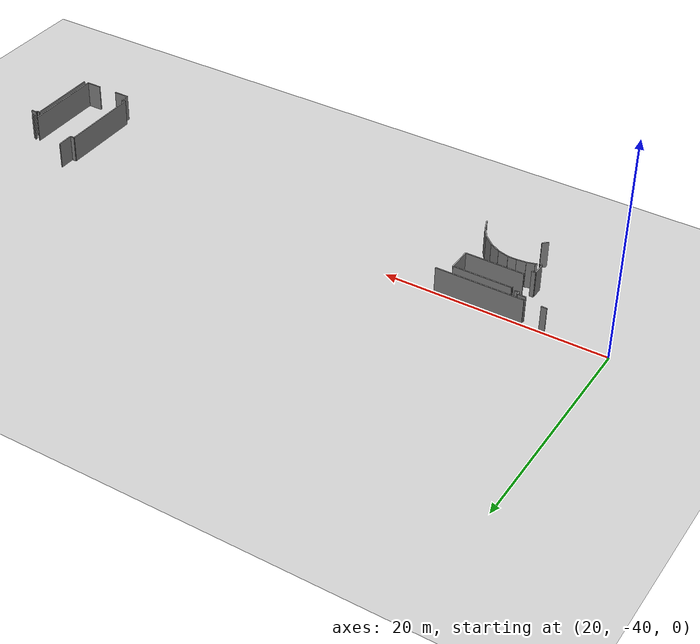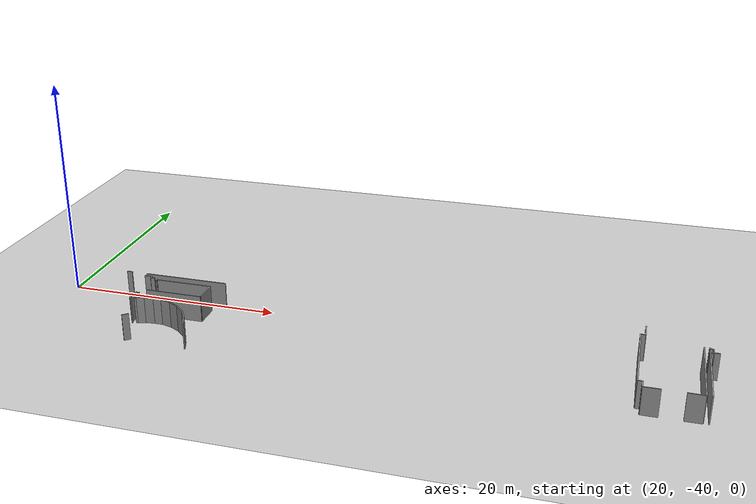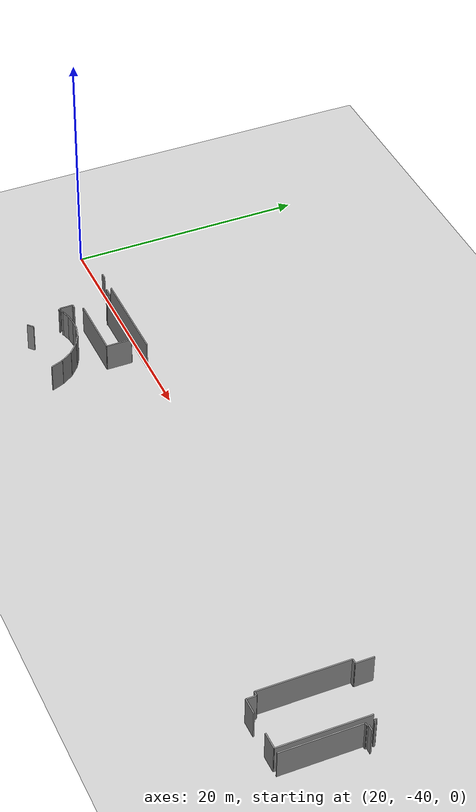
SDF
<sdf version="1.6">
 <world name="default">
  <model name="ground_plane">
   <static>1</static>
   <link name="link">
    <collision name="collision">
     <geometry><plane><normal>0 0 1</normal><size>100 100</size></plane></geometry>
     <surface><friction><ode><mu>100</mu><mu2>50</mu2></ode></friction></surface>
    </collision>
    <visual name="visual">
     <cast_shadows>0</cast_shadows>
     <geometry><plane><normal>0 0 1</normal><size>100 100</size></plane></geometry>
     <material>
      <script><uri>file://media/materials/scripts/gazebo.material</uri><name>Gazebo/Grey</name></script>
     </material>
    </visual>
   </link>
  </model>
  <model name="0510035518_A_40_1_101">
   <static>1</static>
   <link name="Wall_218">
    <collision name="Wall_218_Collision">
     <geometry><box><size>0.755795490632 0.1 2.5</size></box></geometry>
     <pose>0.377897745316 0 1.25 0 0 0</pose>
    </collision>
    <visual name="Wall_218_Visual">
     <pose>0.377897745316 0 1.25 0 0 0</pose>
     <geometry><box><size>0.755795490632 0.1 2.5</size></box></geometry>
     <material>
      <script><uri>file://media/materials/scripts/gazebo.material</uri><name>Gazebo/Grey</name></script>
      <ambient>1 1 1 1</ambient>
     </material>
    </visual>
    <pose>144.402159416 -109.179295014 0 0 0 0.0</pose>
   </link>
   <link name="Wall_219">
    <collision name="Wall_219_Collision">
     <geometry><box><size>0.297237218164 0.1 2.5</size></box></geometry>
     <pose>0.148618609082 0 1.25 0 0 0</pose>
    </collision>
    <visual name="Wall_219_Visual">
     <pose>0.148618609082 0 1.25 0 0 0</pose>
     <geometry><box><size>0.297237218164 0.1 2.5</size></box></geometry>
     <material>
      <script><uri>file://media/materials/scripts/gazebo.material</uri><name>Gazebo/Grey</name></script>
      <ambient>1 1 1 1</ambient>
     </material>
    </visual>
    <pose>145.157954906 -109.179295014 0 0 0 -1.57079632679</pose>
   </link>
   <link name="Wall_220">
    <collision name="Wall_220_Collision">
     <geometry><box><size>0.395554144173 0.1 2.5</size></box></geometry>
     <pose>0.197777072086 0 1.25 0 0 0</pose>
    </collision>
    <visual name="Wall_220_Visual">
     <pose>0.197777072086 0 1.25 0 0 0</pose>
     <geometry><box><size>0.395554144173 0.1 2.5</size></box></geometry>
     <material>
      <script><uri>file://media/materials/scripts/gazebo.material</uri><name>Gazebo/Grey</name></script>
      <ambient>1 1 1 1</ambient>
     </material>
    </visual>
    <pose>145.157954906 -109.476532232 0 0 0 0.0</pose>
   </link>
   <link name="Wall_221">
    <collision name="Wall_221_Collision">
     <geometry><box><size>0.362273737694 0.1 2.5</size></box></geometry>
     <pose>0.181136868847 0 1.25 0 0 0</pose>
    </collision>
    <visual name="Wall_221_Visual">
     <pose>0.181136868847 0 1.25 0 0 0</pose>
     <geometry><box><size>0.362273737694 0.1 2.5</size></box></geometry>
     <material>
      <script><uri>file://media/materials/scripts/gazebo.material</uri><name>Gazebo/Grey</name></script>
      <ambient>1 1 1 1</ambient>
     </material>
    </visual>
    <pose>145.55350905 -112.537059384 0 0 0 3.14159265359</pose>
   </link>
   <link name="Wall_222">
    <collision name="Wall_222_Collision">
     <geometry><box><size>1.09037789775 0.1 2.5</size></box></geometry>
     <pose>0.545188948873 0 1.25 0 0 0</pose>
    </collision>
    <visual name="Wall_222_Visual">
     <pose>0.545188948873 0 1.25 0 0 0</pose>
     <geometry><box><size>1.09037789775 0.1 2.5</size></box></geometry>
     <material>
      <script><uri>file://media/materials/scripts/gazebo.material</uri><name>Gazebo/Grey</name></script>
      <ambient>1 1 1 1</ambient>
     </material>
    </visual>
    <pose>145.191235313 -112.537059384 0 0 0 -1.57079632679</pose>
   </link>
   <link name="Wall_223">
    <collision name="Wall_223_Collision">
     <geometry><box><size>0.235053866503 0.1 2.5</size></box></geometry>
     <pose>0.117526933251 0 1.25 0 0 0</pose>
    </collision>
    <visual name="Wall_223_Visual">
     <pose>0.117526933251 0 1.25 0 0 0</pose>
     <geometry><box><size>0.235053866503 0.1 2.5</size></box></geometry>
     <material>
      <script><uri>file://media/materials/scripts/gazebo.material</uri><name>Gazebo/Grey</name></script>
      <ambient>1 1 1 1</ambient>
     </material>
    </visual>
    <pose>145.191235313 -113.627437282 0 0 0 -0.884914724635</pose>
   </link>
   <link name="Wall_224">
    <collision name="Wall_224_Collision">
     <geometry><box><size>0.614897545727 0.1 2.5</size></box></geometry>
     <pose>0.307448772863 0 1.25 0 0 0</pose>
    </collision>
    <visual name="Wall_224_Visual">
     <pose>0.307448772863 0 1.25 0 0 0</pose>
     <geometry><box><size>0.614897545727 0.1 2.5</size></box></geometry>
     <material>
      <script><uri>file://media/materials/scripts/gazebo.material</uri><name>Gazebo/Grey</name></script>
      <ambient>1 1 1 1</ambient>
     </material>
    </visual>
    <pose>146.570720864 -116.490822483 0 0 0 -2.40997522958</pose>
   </link>
   <link name="Wall_236">
    <collision name="Wall_236_Collision">
     <geometry><box><size>5.28167672277 0.1 2.5</size></box></geometry>
     <pose>2.64083836138 0 1.25 0 0 0</pose>
    </collision>
    <visual name="Wall_236_Visual">
     <pose>2.64083836138 0 1.25 0 0 0</pose>
     <geometry><box><size>5.28167672277 0.1 2.5</size></box></geometry>
     <material>
      <script><uri>file://media/materials/scripts/gazebo.material</uri><name>Gazebo/Grey</name></script>
      <ambient>1 1 1 1</ambient>
     </material>
    </visual>
    <pose>145.929755478 -109.690949508 0 0 0 0.0</pose>
   </link>
   <link name="Wall_237">
    <collision name="Wall_237_Collision">
     <geometry><box><size>2.16348046999 0.1 2.5</size></box></geometry>
     <pose>1.081740235 0 1.25 0 0 0</pose>
    </collision>
    <visual name="Wall_237_Visual">
     <pose>1.081740235 0 1.25 0 0 0</pose>
     <geometry><box><size>2.16348046999 0.1 2.5</size></box></geometry>
     <material>
      <script><uri>file://media/materials/scripts/gazebo.material</uri><name>Gazebo/Grey</name></script>
      <ambient>1 1 1 1</ambient>
     </material>
    </visual>
    <pose>151.211432201 -109.690949508 0 0 0 -1.57079632679</pose>
   </link>
   <link name="Wall_238">
    <collision name="Wall_238_Collision">
     <geometry><box><size>5.30403302636 0.1 2.5</size></box></geometry>
     <pose>2.65201651318 0 1.25 0 0 0</pose>
    </collision>
    <visual name="Wall_238_Visual">
     <pose>2.65201651318 0 1.25 0 0 0</pose>
     <geometry><box><size>5.30403302636 0.1 2.5</size></box></geometry>
     <material>
      <script><uri>file://media/materials/scripts/gazebo.material</uri><name>Gazebo/Grey</name></script>
      <ambient>1 1 1 1</ambient>
     </material>
    </visual>
    <pose>151.211432201 -111.854429978 0 0 0 3.14159265359</pose>
   </link>
   <link name="Wall_239">
    <collision name="Wall_239_Collision">
     <geometry><box><size>0.100603366148 0.1 2.5</size></box></geometry>
     <pose>0.050301683074 0 1.25 0 0 0</pose>
    </collision>
    <visual name="Wall_239_Visual">
     <pose>0.050301683074 0 1.25 0 0 0</pose>
     <geometry><box><size>0.100603366148 0.1 2.5</size></box></geometry>
     <material>
      <script><uri>file://media/materials/scripts/gazebo.material</uri><name>Gazebo/Grey</name></script>
      <ambient>1 1 1 1</ambient>
     </material>
    </visual>
    <pose>145.907399174 -109.790790727 0 0 0 1.57079632679</pose>
   </link>
   <link name="Wall_240">
    <collision name="Wall_240_Collision">
     <geometry><box><size>0.0223692909533 0.1 2.5</size></box></geometry>
     <pose>0.0111846454766 0 1.25 0 0 0</pose>
    </collision>
    <visual name="Wall_240_Visual">
     <pose>0.0111846454766 0 1.25 0 0 0</pose>
     <geometry><box><size>0.0223692909533 0.1 2.5</size></box></geometry>
     <material>
      <script><uri>file://media/materials/scripts/gazebo.material</uri><name>Gazebo/Grey</name></script>
      <ambient>1 1 1 1</ambient>
     </material>
    </visual>
    <pose>145.907399174 -109.690187361 0 0 0 -0.0340777115883</pose>
   </link>
   <link name="Wall_241">
    <collision name="Wall_241_Collision">
     <geometry><box><size>0.716326465024 0.1 2.5</size></box></geometry>
     <pose>0.358163232512 0 1.25 0 0 0</pose>
    </collision>
    <visual name="Wall_241_Visual">
     <pose>0.358163232512 0 1.25 0 0 0</pose>
     <geometry><box><size>0.716326465024 0.1 2.5</size></box></geometry>
     <material>
      <script><uri>file://media/materials/scripts/gazebo.material</uri><name>Gazebo/Grey</name></script>
      <ambient>1 1 1 1</ambient>
     </material>
    </visual>
    <pose>145.770974913 -113.589075897 0 0 0 0.283609688504</pose>
   </link>
   <link name="Wall_242">
    <collision name="Wall_242_Collision">
     <geometry><box><size>0.844795121287 0.1 2.5</size></box></geometry>
     <pose>0.422397560644 0 1.25 0 0 0</pose>
    </collision>
    <visual name="Wall_242_Visual">
     <pose>0.422397560644 0 1.25 0 0 0</pose>
     <geometry><box><size>0.844795121287 0.1 2.5</size></box></geometry>
     <material>
      <script><uri>file://media/materials/scripts/gazebo.material</uri><name>Gazebo/Grey</name></script>
      <ambient>1 1 1 1</ambient>
     </material>
    </visual>
    <pose>146.458685297 -113.388631312 0 0 0 0.102122341573</pose>
   </link>
   <link name="Wall_243">
    <collision name="Wall_243_Collision">
     <geometry><box><size>0.763925055573 0.1 2.5</size></box></geometry>
     <pose>0.381962527787 0 1.25 0 0 0</pose>
    </collision>
    <visual name="Wall_243_Visual">
     <pose>0.381962527787 0 1.25 0 0 0</pose>
     <geometry><box><size>0.763925055573 0.1 2.5</size></box></geometry>
     <material>
      <script><uri>file://media/materials/scripts/gazebo.material</uri><name>Gazebo/Grey</name></script>
      <ambient>1 1 1 1</ambient>
     </material>
    </visual>
    <pose>147.299079073 -113.302508733 0 0 0 0.0</pose>
   </link>
   <link name="Wall_244">
    <collision name="Wall_244_Collision">
     <geometry><box><size>1.01964919654 0.1 2.5</size></box></geometry>
     <pose>0.509824598271 0 1.25 0 0 0</pose>
    </collision>
    <visual name="Wall_244_Visual">
     <pose>0.509824598271 0 1.25 0 0 0</pose>
     <geometry><box><size>1.01964919654 0.1 2.5</size></box></geometry>
     <material>
      <script><uri>file://media/materials/scripts/gazebo.material</uri><name>Gazebo/Grey</name></script>
      <ambient>1 1 1 1</ambient>
     </material>
    </visual>
    <pose>148.063004128 -113.302508733 0 0 0 -0.265465370409</pose>
   </link>
   <link name="Wall_245">
    <collision name="Wall_245_Collision">
     <geometry><box><size>1.06859975546 0.1 2.5</size></box></geometry>
     <pose>0.534299877731 0 1.25 0 0 0</pose>
    </collision>
    <visual name="Wall_245_Visual">
     <pose>0.534299877731 0 1.25 0 0 0</pose>
     <geometry><box><size>1.06859975546 0.1 2.5</size></box></geometry>
     <material>
      <script><uri>file://media/materials/scripts/gazebo.material</uri><name>Gazebo/Grey</name></script>
      <ambient>1 1 1 1</ambient>
     </material>
    </visual>
    <pose>149.046935535 -113.570022229 0 0 0 -0.503634794972</pose>
   </link>
   <link name="Wall_246">
    <collision name="Wall_246_Collision">
     <geometry><box><size>1.17211361581 0.1 2.5</size></box></geometry>
     <pose>0.586056807905 0 1.25 0 0 0</pose>
    </collision>
    <visual name="Wall_246_Visual">
     <pose>0.586056807905 0 1.25 0 0 0</pose>
     <geometry><box><size>1.17211361581 0.1 2.5</size></box></geometry>
     <material>
      <script><uri>file://media/materials/scripts/gazebo.material</uri><name>Gazebo/Grey</name></script>
      <ambient>1 1 1 1</ambient>
     </material>
    </visual>
    <pose>149.982851699 -114.085741505 0 0 0 -0.7364882982</pose>
   </link>
   <link name="Wall_247">
    <collision name="Wall_247_Collision">
     <geometry><box><size>1.15650143411 0.1 2.5</size></box></geometry>
     <pose>0.578250717056 0 1.25 0 0 0</pose>
    </collision>
    <visual name="Wall_247_Visual">
     <pose>0.578250717056 0 1.25 0 0 0</pose>
     <geometry><box><size>1.15650143411 0.1 2.5</size></box></geometry>
     <material>
      <script><uri>file://media/materials/scripts/gazebo.material</uri><name>Gazebo/Grey</name></script>
      <ambient>1 1 1 1</ambient>
     </material>
    </visual>
    <pose>150.851190854 -114.87303906 0 0 0 -1.00015837829</pose>
   </link>
   <link name="Wall_248">
    <collision name="Wall_248_Collision">
     <geometry><box><size>1.11672642494 0.1 2.5</size></box></geometry>
     <pose>0.558363212471 0 1.25 0 0 0</pose>
    </collision>
    <visual name="Wall_248_Visual">
     <pose>0.558363212471 0 1.25 0 0 0</pose>
     <geometry><box><size>1.11672642494 0.1 2.5</size></box></geometry>
     <material>
      <script><uri>file://media/materials/scripts/gazebo.material</uri><name>Gazebo/Grey</name></script>
      <ambient>1 1 1 1</ambient>
     </material>
    </visual>
    <pose>151.47589711 -115.846300413 0 0 0 -1.2121321613</pose>
   </link>
   <link name="Wall_264">
    <collision name="Wall_264_Collision">
     <geometry><box><size>0.175645561685 0.1 2.5</size></box></geometry>
     <pose>0.0878227808425 0 1.25 0 0 0</pose>
    </collision>
    <visual name="Wall_264_Visual">
     <pose>0.0878227808425 0 1.25 0 0 0</pose>
     <geometry><box><size>0.175645561685 0.1 2.5</size></box></geometry>
     <material>
      <script><uri>file://media/materials/scripts/gazebo.material</uri><name>Gazebo/Grey</name></script>
      <ambient>1 1 1 1</ambient>
     </material>
    </visual>
    <pose>145.619053668 -113.677230867 0 0 0 0.52578397872</pose>
   </link>
   <link name="Wall_273">
    <collision name="Wall_273_Collision">
     <geometry><box><size>7.95808193077 0.1 2.5</size></box></geometry>
     <pose>3.97904096539 0 1.25 0 0 0</pose>
    </collision>
    <visual name="Wall_273_Visual">
     <pose>3.97904096539 0 1.25 0 0 0</pose>
     <geometry><box><size>7.95808193077 0.1 2.5</size></box></geometry>
     <material>
      <script><uri>file://media/materials/scripts/gazebo.material</uri><name>Gazebo/Grey</name></script>
      <ambient>1 1 1 1</ambient>
     </material>
    </visual>
    <pose>152.327977136 -108.759352175 0 0 0 3.14159265359</pose>
   </link>
   <link name="Wall_274">
    <collision name="Wall_274_Collision">
     <geometry><box><size>0.513317677535 0.1 2.5</size></box></geometry>
     <pose>0.256658838767 0 1.25 0 0 0</pose>
    </collision>
    <visual name="Wall_274_Visual">
     <pose>0.256658838767 0 1.25 0 0 0</pose>
     <geometry><box><size>0.513317677535 0.1 2.5</size></box></geometry>
     <material>
      <script><uri>file://media/materials/scripts/gazebo.material</uri><name>Gazebo/Grey</name></script>
      <ambient>1 1 1 1</ambient>
     </material>
    </visual>
    <pose>142.875833598 -108.759352175 0 0 0 3.11832952423</pose>
   </link>
   <link name="Wall_322">
    <collision name="Wall_322_Collision">
     <geometry><box><size>7.57929501429 0.1 2.5</size></box></geometry>
     <pose>3.78964750715 0 1.25 0 0 0</pose>
    </collision>
    <visual name="Wall_322_Visual">
     <pose>3.78964750715 0 1.25 0 0 0</pose>
     <geometry><box><size>7.57929501429 0.1 2.5</size></box></geometry>
     <material>
      <script><uri>file://media/materials/scripts/gazebo.material</uri><name>Gazebo/Grey</name></script>
      <ambient>1 1 1 1</ambient>
     </material>
    </visual>
    <pose>189.392187996 -115.944617339 0 0 0 1.57079632679</pose>
   </link>
   <link name="Wall_323">
    <collision name="Wall_323_Collision">
     <geometry><box><size>0.412321371864 0.1 2.5</size></box></geometry>
     <pose>0.206160685932 0 1.25 0 0 0</pose>
    </collision>
    <visual name="Wall_323_Visual">
     <pose>0.206160685932 0 1.25 0 0 0</pose>
     <geometry><box><size>0.412321371864 0.1 2.5</size></box></geometry>
     <material>
      <script><uri>file://media/materials/scripts/gazebo.material</uri><name>Gazebo/Grey</name></script>
      <ambient>1 1 1 1</ambient>
     </material>
    </visual>
    <pose>189.392187996 -108.365322325 0 0 0 0.0</pose>
   </link>
   <link name="Wall_324">
    <collision name="Wall_324_Collision">
     <geometry><box><size>1.52632581772 0.1 2.5</size></box></geometry>
     <pose>0.76316290886 0 1.25 0 0 0</pose>
    </collision>
    <visual name="Wall_324_Visual">
     <pose>0.76316290886 0 1.25 0 0 0</pose>
     <geometry><box><size>1.52632581772 0.1 2.5</size></box></geometry>
     <material>
      <script><uri>file://media/materials/scripts/gazebo.material</uri><name>Gazebo/Grey</name></script>
      <ambient>1 1 1 1</ambient>
     </material>
    </visual>
    <pose>189.804509368 -108.365322325 0 0 0 1.57079632679</pose>
   </link>
   <link name="Wall_330">
    <collision name="Wall_330_Collision">
     <geometry><box><size>7.51527469038 0.1 2.5</size></box></geometry>
     <pose>3.75763734519 0 1.25 0 0 0</pose>
    </collision>
    <visual name="Wall_330_Visual">
     <pose>3.75763734519 0 1.25 0 0 0</pose>
     <geometry><box><size>7.51527469038 0.1 2.5</size></box></geometry>
     <material>
      <script><uri>file://media/materials/scripts/gazebo.material</uri><name>Gazebo/Grey</name></script>
      <ambient>1 1 1 1</ambient>
     </material>
    </visual>
    <pose>194.450047634 -109.260082566 0 0 0 -1.57079632679</pose>
   </link>
   <link name="Wall_331">
    <collision name="Wall_331_Collision">
     <geometry><box><size>1.40946332169 0.1 2.5</size></box></geometry>
     <pose>0.704731660845 0 1.25 0 0 0</pose>
    </collision>
    <visual name="Wall_331_Visual">
     <pose>0.704731660845 0 1.25 0 0 0</pose>
     <geometry><box><size>1.40946332169 0.1 2.5</size></box></geometry>
     <material>
      <script><uri>file://media/materials/scripts/gazebo.material</uri><name>Gazebo/Grey</name></script>
      <ambient>1 1 1 1</ambient>
     </material>
    </visual>
    <pose>194.450047634 -116.775357256 0 0 0 3.14159265359</pose>
   </link>
   <link name="Wall_332">
    <collision name="Wall_332_Collision">
     <geometry><box><size>1.40082565894 0.1 2.5</size></box></geometry>
     <pose>0.70041282947 0 1.25 0 0 0</pose>
    </collision>
    <visual name="Wall_332_Visual">
     <pose>0.70041282947 0 1.25 0 0 0</pose>
     <geometry><box><size>1.40082565894 0.1 2.5</size></box></geometry>
     <material>
      <script><uri>file://media/materials/scripts/gazebo.material</uri><name>Gazebo/Grey</name></script>
      <ambient>1 1 1 1</ambient>
     </material>
    </visual>
    <pose>191.173578914 -116.775357256 0 0 0 3.14159265359</pose>
   </link>
   <link name="Wall_333">
    <collision name="Wall_333_Collision">
     <geometry><box><size>0.829723721816 0.1 2.5</size></box></geometry>
     <pose>0.414861860908 0 1.25 0 0 0</pose>
    </collision>
    <visual name="Wall_333_Visual">
     <pose>0.414861860908 0 1.25 0 0 0</pose>
     <geometry><box><size>0.829723721816 0.1 2.5</size></box></geometry>
     <material>
      <script><uri>file://media/materials/scripts/gazebo.material</uri><name>Gazebo/Grey</name></script>
      <ambient>1 1 1 1</ambient>
     </material>
    </visual>
    <pose>189.772753255 -116.775357256 0 0 0 1.57079632679</pose>
   </link>
   <link name="Wall_334">
    <collision name="Wall_334_Collision">
     <geometry><box><size>0.380566615546 0.1 2.5</size></box></geometry>
     <pose>0.190283307773 0 1.25 0 0 0</pose>
    </collision>
    <visual name="Wall_334_Visual">
     <pose>0.190283307773 0 1.25 0 0 0</pose>
     <geometry><box><size>0.380566615546 0.1 2.5</size></box></geometry>
     <material>
      <script><uri>file://media/materials/scripts/gazebo.material</uri><name>Gazebo/Grey</name></script>
      <ambient>1 1 1 1</ambient>
     </material>
    </visual>
    <pose>189.772753255 -115.945633534 0 0 0 3.13892243297</pose>
   </link>
   <link name="Wall_339">
    <collision name="Wall_339_Collision">
     <geometry><box><size>0.144553826612 0.1 2.5</size></box></geometry>
     <pose>0.0722769133058 0 1.25 0 0 0</pose>
    </collision>
    <visual name="Wall_339_Visual">
     <pose>0.0722769133058 0 1.25 0 0 0</pose>
     <geometry><box><size>0.144553826612 0.1 2.5</size></box></geometry>
     <material>
      <script><uri>file://media/materials/scripts/gazebo.material</uri><name>Gazebo/Grey</name></script>
      <ambient>1 1 1 1</ambient>
     </material>
    </visual>
    <pose>195.182216577 -109.564433153 0 0 0 1.57079632679</pose>
   </link>
   <link name="Wall_340">
    <collision name="Wall_340_Collision">
     <geometry><box><size>0.30562083201 0.1 2.5</size></box></geometry>
     <pose>0.152810416005 0 1.25 0 0 0</pose>
    </collision>
    <visual name="Wall_340_Visual">
     <pose>0.152810416005 0 1.25 0 0 0</pose>
     <geometry><box><size>0.30562083201 0.1 2.5</size></box></geometry>
     <material>
      <script><uri>file://media/materials/scripts/gazebo.material</uri><name>Gazebo/Grey</name></script>
      <ambient>1 1 1 1</ambient>
     </material>
    </visual>
    <pose>195.182216577 -109.419879327 0 0 0 3.14159265359</pose>
   </link>
   <link name="Wall_341">
    <collision name="Wall_341_Collision">
     <geometry><box><size>0.190028580502 0.1 2.5</size></box></geometry>
     <pose>0.0950142902509 0 1.25 0 0 0</pose>
    </collision>
    <visual name="Wall_341_Visual">
     <pose>0.0950142902509 0 1.25 0 0 0</pose>
     <geometry><box><size>0.190028580502 0.1 2.5</size></box></geometry>
     <material>
      <script><uri>file://media/materials/scripts/gazebo.material</uri><name>Gazebo/Grey</name></script>
      <ambient>1 1 1 1</ambient>
     </material>
    </visual>
    <pose>194.876595745 -109.419879327 0 0 0 1.57079632679</pose>
   </link>
   <link name="Wall_343">
    <collision name="Wall_343_Collision">
     <geometry><box><size>6.64439504605 0.1 2.5</size></box></geometry>
     <pose>3.32219752302 0 1.25 0 0 0</pose>
    </collision>
    <visual name="Wall_343_Visual">
     <pose>3.32219752302 0 1.25 0 0 0</pose>
     <geometry><box><size>6.64439504605 0.1 2.5</size></box></geometry>
     <material>
      <script><uri>file://media/materials/scripts/gazebo.material</uri><name>Gazebo/Grey</name></script>
      <ambient>1 1 1 1</ambient>
     </material>
    </visual>
    <pose>194.902000635 -116.773832963 0 0 0 1.57079632679</pose>
   </link>
   <link name="Wall_344">
    <collision name="Wall_344_Collision">
     <geometry><box><size>0.248713877421 0.1 2.5</size></box></geometry>
     <pose>0.124356938711 0 1.25 0 0 0</pose>
    </collision>
    <visual name="Wall_344_Visual">
     <pose>0.124356938711 0 1.25 0 0 0</pose>
     <geometry><box><size>0.248713877421 0.1 2.5</size></box></geometry>
     <material>
      <script><uri>file://media/materials/scripts/gazebo.material</uri><name>Gazebo/Grey</name></script>
      <ambient>1 1 1 1</ambient>
     </material>
    </visual>
    <pose>194.902000635 -110.129437917 0 0 0 0.0</pose>
   </link>
   <link name="Wall_345">
    <collision name="Wall_345_Collision">
     <geometry><box><size>0.144299777707 0.1 2.5</size></box></geometry>
     <pose>0.0721498888536 0 1.25 0 0 0</pose>
    </collision>
    <visual name="Wall_345_Visual">
     <pose>0.0721498888536 0 1.25 0 0 0</pose>
     <geometry><box><size>0.144299777707 0.1 2.5</size></box></geometry>
     <material>
      <script><uri>file://media/materials/scripts/gazebo.material</uri><name>Gazebo/Grey</name></script>
      <ambient>1 1 1 1</ambient>
     </material>
    </visual>
    <pose>195.150714513 -110.129437917 0 0 0 1.57079632679</pose>
   </link>
   <link name="Wall_346">
    <collision name="Wall_346_Collision">
     <geometry><box><size>0.53985392188 0.1 2.5</size></box></geometry>
     <pose>0.26992696094 0 1.25 0 0 0</pose>
    </collision>
    <visual name="Wall_346_Visual">
     <pose>0.26992696094 0 1.25 0 0 0</pose>
     <geometry><box><size>0.53985392188 0.1 2.5</size></box></geometry>
     <material>
      <script><uri>file://media/materials/scripts/gazebo.material</uri><name>Gazebo/Grey</name></script>
      <ambient>1 1 1 1</ambient>
     </material>
    </visual>
    <pose>195.150714513 -109.985138139 0 0 0 0.0</pose>
   </link>
   <pose>-116.8 68.630612893 0 0 0 0</pose>
  </model>
 </world>
</sdf>
